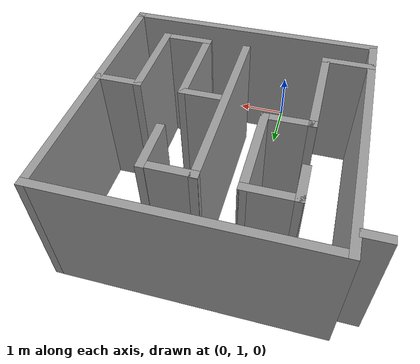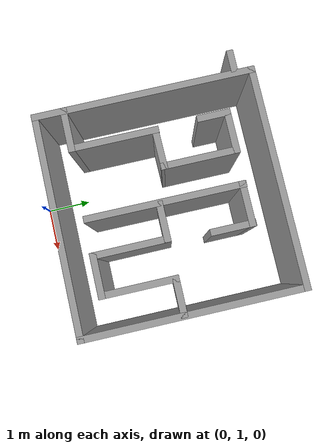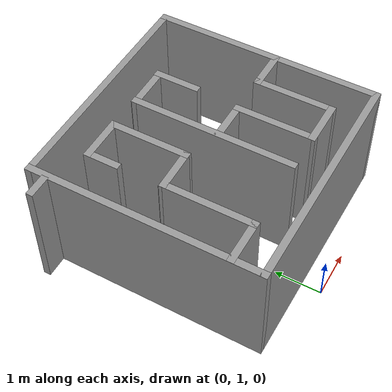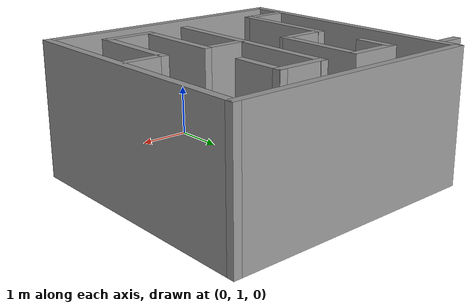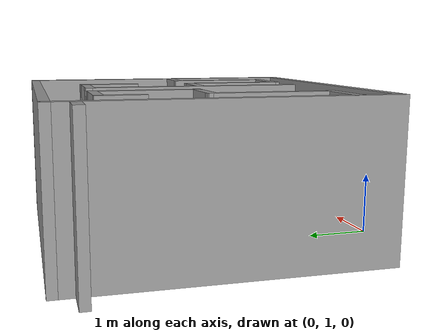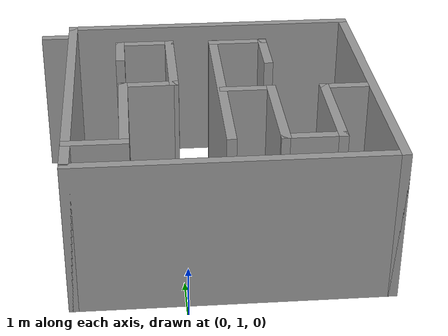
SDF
<?xml version='1.0'?>
<sdf version='1.7'>
  <model name='T-junction'>
    <pose>0.496541 3.20923 0 0 -0 0</pose>
    <link name='Wall_10'>
      <collision name='Wall_10_Collision'>
        <geometry>
          <box>
            <size>5 0.15 2.5</size>
          </box>
        </geometry>
        <pose>0 0 1.25 0 -0 0</pose>
      </collision>
      <visual name='Wall_10_Visual'>
        <pose>0 0 1.25 0 -0 0</pose>
        <geometry>
          <box>
            <size>5 0.15 2.5</size>
          </box>
        </geometry>
        <material>
          <script>
            <uri>file://media/materials/scripts/gazebo.material</uri>
            <name>Gazebo/Grey</name>
          </script>
          <ambient>1 1 1 1</ambient>
        </material>
        <meta>
          <layer>0</layer>
        </meta>
      </visual>
      <pose>2.65471 0.70923 0 0 -0 1.5708</pose>
    </link>
    <link name='Wall_11'>
      <collision name='Wall_11_Collision'>
        <geometry>
          <box>
            <size>5 0.15 2.5</size>
          </box>
        </geometry>
        <pose>0 0 1.25 0 -0 0</pose>
      </collision>
      <visual name='Wall_11_Visual'>
        <pose>0 0 1.25 0 -0 0</pose>
        <geometry>
          <box>
            <size>5 0.15 2.5</size>
          </box>
        </geometry>
        <material>
          <script>
            <uri>file://media/materials/scripts/gazebo.material</uri>
            <name>Gazebo/Grey</name>
          </script>
          <ambient>1 1 1 1</ambient>
        </material>
        <meta>
          <layer>0</layer>
        </meta>
      </visual>
      <pose>0.229713 3.13423 0 0 -0 3.14159</pose>
    </link>
    <link name='Wall_13'>
      <collision name='Wall_13_Collision'>
        <geometry>
          <box>
            <size>0.75 0.15 2.5</size>
          </box>
        </geometry>
        <pose>0 0 1.25 0 -0 0</pose>
      </collision>
      <visual name='Wall_13_Visual'>
        <pose>0 0 1.25 0 -0 0</pose>
        <geometry>
          <box>
            <size>0.75 0.15 2.5</size>
          </box>
        </geometry>
        <material>
          <script>
            <uri>file://media/materials/scripts/gazebo.material</uri>
            <name>Gazebo/Grey</name>
          </script>
          <ambient>1 1 1 1</ambient>
        </material>
        <meta>
          <layer>0</layer>
        </meta>
      </visual>
      <pose>-1.37534 2.08528 0 0 -0 1.5708</pose>
    </link>
    <link name='Wall_14'>
      <collision name='Wall_14_Collision'>
        <geometry>
          <box>
            <size>1 0.15 2.5</size>
          </box>
        </geometry>
        <pose>0 0 1.25 0 -0 0</pose>
      </collision>
      <visual name='Wall_14_Visual'>
        <pose>0 0 1.25 0 -0 0</pose>
        <geometry>
          <box>
            <size>1 0.15 2.5</size>
          </box>
        </geometry>
        <material>
          <script>
            <uri>file://media/materials/scripts/gazebo.material</uri>
            <name>Gazebo/Grey</name>
          </script>
          <ambient>1 1 1 1</ambient>
        </material>
        <meta>
          <layer>0</layer>
        </meta>
      </visual>
      <pose>-0.950337 2.38528 0 0 -0 0</pose>
    </link>
    <link name='Wall_15'>
      <collision name='Wall_15_Collision'>
        <geometry>
          <box>
            <size>1.75 0.15 2.5</size>
          </box>
        </geometry>
        <pose>0 0 1.25 0 -0 0</pose>
      </collision>
      <visual name='Wall_15_Visual'>
        <pose>0 0 1.25 0 -0 0</pose>
        <geometry>
          <box>
            <size>1.75 0.15 2.5</size>
          </box>
        </geometry>
        <material>
          <script>
            <uri>file://media/materials/scripts/gazebo.material</uri>
            <name>Gazebo/Grey</name>
          </script>
          <ambient>1 1 1 1</ambient>
        </material>
        <meta>
          <layer>0</layer>
        </meta>
      </visual>
      <pose>-0.525337 1.58528 0 0 -0 -1.5708</pose>
    </link>
    <link name='Wall_16'>
      <collision name='Wall_16_Collision'>
        <geometry>
          <box>
            <size>0.967267 0.15 2.5</size>
          </box>
        </geometry>
        <pose>0 0 1.25 0 -0 0</pose>
      </collision>
      <visual name='Wall_16_Visual'>
        <pose>0 0 1.25 0 -0 0</pose>
        <geometry>
          <box>
            <size>0.967267 0.15 2.5</size>
          </box>
        </geometry>
        <material>
          <script>
            <uri>file://media/materials/scripts/gazebo.material</uri>
            <name>Gazebo/Grey</name>
          </script>
          <ambient>1 1 1 1</ambient>
        </material>
        <meta>
          <layer>0</layer>
        </meta>
      </visual>
      <pose>-0.933965 0.778812 0 0 -0 -3.12577</pose>
    </link>
    <link name='Wall_17'>
      <collision name='Wall_17_Collision'>
        <geometry>
          <box>
            <size>2 0.15 2.5</size>
          </box>
        </geometry>
        <pose>0 0 1.25 0 -0 0</pose>
      </collision>
      <visual name='Wall_17_Visual'>
        <pose>0 0 1.25 0 -0 0</pose>
        <geometry>
          <box>
            <size>2 0.15 2.5</size>
          </box>
        </geometry>
        <material>
          <script>
            <uri>file://media/materials/scripts/gazebo.material</uri>
            <name>Gazebo/Grey</name>
          </script>
          <ambient>1 1 1 1</ambient>
        </material>
        <meta>
          <layer>0</layer>
        </meta>
      </visual>
      <pose>-1.34259 -0.14396 0 0 -0 -1.5708</pose>
    </link>
    <link name='Wall_28'>
      <collision name='Wall_28_Collision'>
        <geometry>
          <box>
            <size>1.01023 0.15 2.5</size>
          </box>
        </geometry>
        <pose>0 0 1.25 0 -0 0</pose>
      </collision>
      <visual name='Wall_28_Visual'>
        <pose>0 0 1.25 0 -0 0</pose>
        <geometry>
          <box>
            <size>1.01023 0.15 2.5</size>
          </box>
        </geometry>
        <material>
          <script>
            <uri>file://media/materials/scripts/gazebo.material</uri>
            <name>Gazebo/Grey</name>
          </script>
          <ambient>1 1 1 1</ambient>
        </material>
        <meta>
          <layer>0</layer>
        </meta>
      </visual>
      <pose>0.662272 2.33731 0 0 -0 0</pose>
    </link>
    <link name='Wall_29'>
      <collision name='Wall_29_Collision'>
        <geometry>
          <box>
            <size>1 0.15 2.5</size>
          </box>
        </geometry>
        <pose>0 0 1.25 0 -0 0</pose>
      </collision>
      <visual name='Wall_29_Visual'>
        <pose>0 0 1.25 0 -0 0</pose>
        <geometry>
          <box>
            <size>1 0.15 2.5</size>
          </box>
        </geometry>
        <material>
          <script>
            <uri>file://media/materials/scripts/gazebo.material</uri>
            <name>Gazebo/Grey</name>
          </script>
          <ambient>1 1 1 1</ambient>
        </material>
        <meta>
          <layer>0</layer>
        </meta>
      </visual>
      <pose>1.09227 1.92231 0 0 -0 -1.5708</pose>
    </link>
    <link name='Wall_33'>
      <collision name='Wall_33_Collision'>
        <geometry>
          <box>
            <size>3.56629 0.15 2.5</size>
          </box>
        </geometry>
        <pose>0 0 1.25 0 -0 0</pose>
      </collision>
      <visual name='Wall_33_Visual'>
        <pose>0 0 1.25 0 -0 0</pose>
        <geometry>
          <box>
            <size>3.56629 0.15 2.5</size>
          </box>
        </geometry>
        <material>
          <script>
            <uri>file://media/materials/scripts/gazebo.material</uri>
            <name>Gazebo/Grey</name>
          </script>
          <ambient>1 1 1 1</ambient>
        </material>
        <meta>
          <layer>0</layer>
        </meta>
      </visual>
      <pose>0.227448 0.639178 0 0 -0 1.56797</pose>
    </link>
    <link name='Wall_36'>
      <collision name='Wall_36_Collision'>
        <geometry>
          <box>
            <size>0.9 0.15 2.5</size>
          </box>
        </geometry>
        <pose>0 0 1.25 0 -0 0</pose>
      </collision>
      <visual name='Wall_36_Visual'>
        <pose>0 0 1.25 0 -0 0</pose>
        <geometry>
          <box>
            <size>0.9 0.15 2.5</size>
          </box>
        </geometry>
        <material>
          <script>
            <uri>file://media/materials/scripts/gazebo.material</uri>
            <name>Gazebo/Grey</name>
          </script>
          <ambient>1 1 1 1</ambient>
        </material>
        <meta>
          <layer>0</layer>
        </meta>
      </visual>
      <pose>0.63783 0.506473 0 0 -0 0</pose>
    </link>
    <link name='Wall_37'>
      <collision name='Wall_37_Collision'>
        <geometry>
          <box>
            <size>1.75766 0.15 2.5</size>
          </box>
        </geometry>
        <pose>0 0 1.25 0 -0 0</pose>
      </collision>
      <visual name='Wall_37_Visual'>
        <pose>0 0 1.25 0 -0 0</pose>
        <geometry>
          <box>
            <size>1.75766 0.15 2.5</size>
          </box>
        </geometry>
        <material>
          <script>
            <uri>file://media/materials/scripts/gazebo.material</uri>
            <name>Gazebo/Grey</name>
          </script>
          <ambient>1 1 1 1</ambient>
        </material>
        <meta>
          <layer>0</layer>
        </meta>
      </visual>
      <pose>1.01693 -0.297234 0 0 -0 -1.56877</pose>
    </link>
    <link name='Wall_38'>
      <collision name='Wall_38_Collision'>
        <geometry>
          <box>
            <size>1 0.15 2.5</size>
          </box>
        </geometry>
        <pose>0 0 1.25 0 -0 0</pose>
      </collision>
      <visual name='Wall_38_Visual'>
        <pose>0 0 1.25 0 -0 0</pose>
        <geometry>
          <box>
            <size>1 0.15 2.5</size>
          </box>
        </geometry>
        <material>
          <script>
            <uri>file://media/materials/scripts/gazebo.material</uri>
            <name>Gazebo/Grey</name>
          </script>
          <ambient>1 1 1 1</ambient>
        </material>
        <meta>
          <layer>0</layer>
        </meta>
      </visual>
      <pose>1.44356 -1.10094 0 0 -0 0</pose>
    </link>
    <link name='Wall_39'>
      <collision name='Wall_39_Collision'>
        <geometry>
          <box>
            <size>1.74504 0.15 2.5</size>
          </box>
        </geometry>
        <pose>0 0 1.25 0 -0 0</pose>
      </collision>
      <visual name='Wall_39_Visual'>
        <pose>0 0 1.25 0 -0 0</pose>
        <geometry>
          <box>
            <size>1.74504 0.15 2.5</size>
          </box>
        </geometry>
        <material>
          <script>
            <uri>file://media/materials/scripts/gazebo.material</uri>
            <name>Gazebo/Grey</name>
          </script>
          <ambient>1 1 1 1</ambient>
        </material>
        <meta>
          <layer>0</layer>
        </meta>
      </visual>
      <pose>1.86856 -0.303428 0 0 -0 1.5708</pose>
    </link>
    <link name='Wall_46'>
      <collision name='Wall_46_Collision'>
        <geometry>
          <box>
            <size>1 0.15 2.5</size>
          </box>
        </geometry>
        <pose>0 0 1.25 0 -0 0</pose>
      </collision>
      <visual name='Wall_46_Visual'>
        <pose>0 0 1.25 0 -0 0</pose>
        <geometry>
          <box>
            <size>1 0.15 2.5</size>
          </box>
        </geometry>
        <material>
          <script>
            <uri>file://media/materials/scripts/gazebo.material</uri>
            <name>Gazebo/Grey</name>
          </script>
          <ambient>1 1 1 1</ambient>
        </material>
        <meta>
          <layer>0</layer>
        </meta>
      </visual>
      <pose>-1.76759 -1.07766 0 0 -0 3.14159</pose>
    </link>
    <link name='Wall_52'>
      <collision name='Wall_52_Collision'>
        <geometry>
          <box>
            <size>0.5 0.15 2.5</size>
          </box>
        </geometry>
        <pose>0 0 1.25 0 -0 0</pose>
      </collision>
      <visual name='Wall_52_Visual'>
        <pose>0 0 1.25 0 -0 0</pose>
        <geometry>
          <box>
            <size>0.5 0.15 2.5</size>
          </box>
        </geometry>
        <material>
          <script>
            <uri>file://media/materials/scripts/gazebo.material</uri>
            <name>Gazebo/Grey</name>
          </script>
          <ambient>1 1 1 1</ambient>
        </material>
        <meta>
          <layer>0</layer>
        </meta>
      </visual>
      <pose>-2.47971 2.76251 0 0 -0 0</pose>
    </link>
    <link name='Wall_54'>
      <collision name='Wall_54_Collision'>
        <geometry>
          <box>
            <size>0.9 0.15 2.5</size>
          </box>
        </geometry>
        <pose>0 0 1.25 0 -0 0</pose>
      </collision>
      <visual name='Wall_54_Visual'>
        <pose>0 0 1.25 0 -0 0</pose>
        <geometry>
          <box>
            <size>0.9 0.15 2.5</size>
          </box>
        </geometry>
        <material>
          <script>
            <uri>file://media/materials/scripts/gazebo.material</uri>
            <name>Gazebo/Grey</name>
          </script>
          <ambient>1 1 1 1</ambient>
        </material>
        <meta>
          <layer>0</layer>
        </meta>
      </visual>
      <pose>2.24356 0.494086 0 0 -0 0</pose>
    </link>
    <link name='Wall_8'>
      <collision name='Wall_8_Collision'>
        <geometry>
          <box>
            <size>5 0.15 2.5</size>
          </box>
        </geometry>
        <pose>0 0 1.25 0 -0 0</pose>
      </collision>
      <visual name='Wall_8_Visual'>
        <pose>0 0 1.25 0 -0 0</pose>
        <geometry>
          <box>
            <size>5 0.15 2.5</size>
          </box>
        </geometry>
        <material>
          <script>
            <uri>file://media/materials/scripts/gazebo.material</uri>
            <name>Gazebo/Grey</name>
          </script>
          <ambient>1 1 1 1</ambient>
        </material>
        <meta>
          <layer>0</layer>
        </meta>
      </visual>
      <pose>-2.19529 0.70923 0 0 -0 -1.5708</pose>
    </link>
    <link name='Wall_9'>
      <collision name='Wall_9_Collision'>
        <geometry>
          <box>
            <size>5 0.15 2.5</size>
          </box>
        </geometry>
        <pose>0 0 1.25 0 -0 0</pose>
      </collision>
      <visual name='Wall_9_Visual'>
        <pose>0 0 1.25 0 -0 0</pose>
        <geometry>
          <box>
            <size>5 0.15 2.5</size>
          </box>
        </geometry>
        <material>
          <script>
            <uri>file://media/materials/scripts/gazebo.material</uri>
            <name>Gazebo/Grey</name>
          </script>
          <ambient>1 1 1 1</ambient>
        </material>
        <meta>
          <layer>0</layer>
        </meta>
      </visual>
      <pose>0.229713 -1.71577 0 0 -0 0</pose>
    </link>
    <static>1</static>
  </model>
</sdf>
